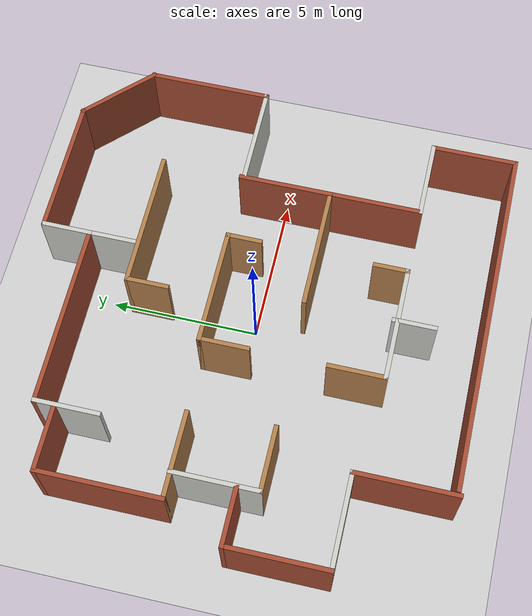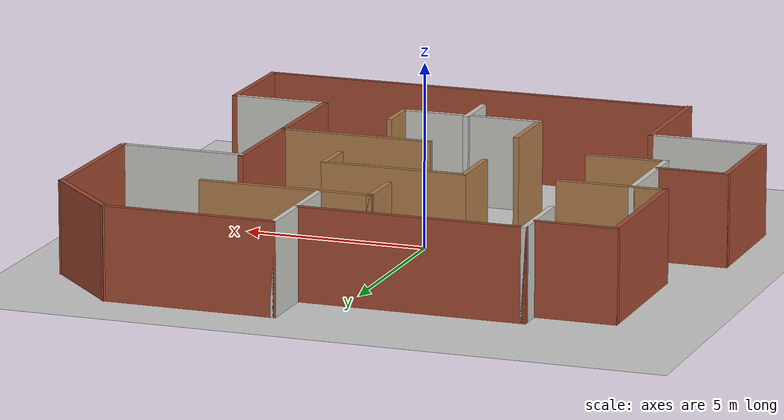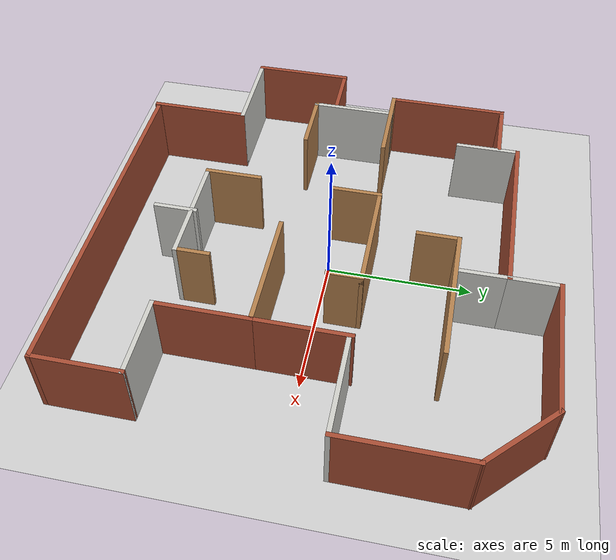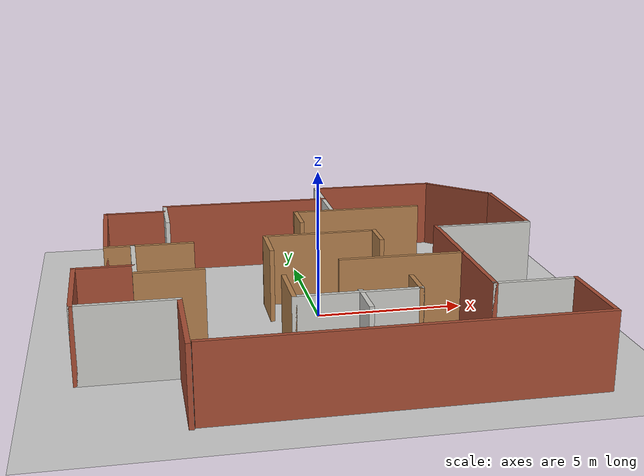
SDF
<sdf version="1.6">
 <world name="default">
  <plugin name="gazebo_ros_state" filename="libgazebo_ros_state.so">
   <ros><namespace>/gazebo</namespace></ros>
   <update_rate>1.0</update_rate>
  </plugin>
  <light name="sun" type="directional">
   <pose>0 0 10 0 -0 0</pose>
   <diffuse>0.8 0.8 0.8 1</diffuse>
   <specular>0.2 0.2 0.2 1</specular>
   <attenuation>
    <range>1000</range>
    <constant>0.9</constant>
    <linear>0.01</linear>
    <quadratic>0.001</quadratic>
   </attenuation>
   <direction>-0.5 0.1 -0.9</direction>
  </light>
  <model name="ground_plane">
   <static>1</static>
   <link name="link">
    <collision name="collision">
     <geometry><plane><normal>0 0 1</normal><size>100 100</size></plane></geometry>
     <surface>
      <contact><collide_bitmask>65535</collide_bitmask></contact>
      <friction><ode><mu>100</mu><mu2>50</mu2></ode></friction>
     </surface>
    </collision>
    <visual name="visual">
     <cast_shadows>0</cast_shadows>
     <geometry><plane><normal>0 0 1</normal><size>100 100</size></plane></geometry>
     <material>
      <script><uri>file://media/materials/scripts/gazebo.material</uri><name>Gazebo/Grey</name></script>
     </material>
    </visual>
   </link>
  </model>
  <gravity>0 0 -9.8</gravity>
  <magnetic_field>6e-06 2.3e-05 -4.2e-05</magnetic_field>
  <atmosphere type="adiabatic"/>
  <physics name="default_physics" default="0" type="ode">
   <max_step_size>0.001</max_step_size>
   <real_time_factor>1</real_time_factor>
   <real_time_update_rate>1000</real_time_update_rate>
  </physics>
  <scene><ambient>0.4 0.4 0.4 1</ambient><background>0.7 0.7 0.7 1</background><shadows>1</shadows></scene>
  <audio><device>default</device></audio>
  <spherical_coordinates>
   <surface_model>EARTH_WGS84</surface_model>
   <latitude_deg>0</latitude_deg>
   <longitude_deg>0</longitude_deg>
   <elevation>0</elevation>
   <heading_deg>0</heading_deg>
  </spherical_coordinates>
  <model name="dat160_w5">
   <link name="Wall_11">
    <collision name="Wall_11_Collision">
     <geometry><box><size>4.25 0.15 2.5</size></box></geometry>
     <pose>0 0 1.25 0 -0 0</pose>
    </collision>
    <visual name="Wall_11_Visual">
     <pose>0 0 1.25 0 -0 0</pose>
     <geometry><box><size>4.25 0.15 2.5</size></box></geometry>
     <material>
      <script><uri>file://media/materials/scripts/gazebo.material</uri><name>Gazebo/Wood</name></script>
      <ambient>1 1 1 1</ambient>
     </material>
     <meta><layer>0</layer></meta>
    </visual>
    <pose>2.50212 -1.56245 0 0 -0 0</pose>
   </link>
   <link name="Wall_163">
    <collision name="Wall_163_Collision">
     <geometry><box><size>1.75 0.15 2.5</size></box></geometry>
     <pose>0 0 1.25 0 -0 0</pose>
    </collision>
    <visual name="Wall_163_Visual">
     <pose>0 0 1.25 0 -0 0</pose>
     <geometry><box><size>1.75 0.15 2.5</size></box></geometry>
     <material>
      <script><uri>file://media/materials/scripts/gazebo.material</uri><name>Gazebo/Wood</name></script>
      <ambient>1 1 1 1</ambient>
     </material>
     <meta><layer>0</layer></meta>
    </visual>
    <pose>-1.59211 0.643376 0 0 -0 -1.5708</pose>
   </link>
   <link name="Wall_167">
    <collision name="Wall_167_Collision">
     <geometry><box><size>2 0.15 2.5</size></box></geometry>
     <pose>0 0 1.25 0 -0 0</pose>
    </collision>
    <visual name="Wall_167_Visual">
     <pose>0 0 1.25 0 -0 0</pose>
     <geometry><box><size>2 0.15 2.5</size></box></geometry>
     <material>
      <script><uri>file://media/materials/scripts/gazebo.material</uri><name>Gazebo/Wood</name></script>
      <ambient>1 1 1 1</ambient>
     </material>
     <meta><layer>0</layer></meta>
    </visual>
    <pose>-1.59211 -3.73162 0 0 -0 -1.5708</pose>
   </link>
   <link name="Wall_184">
    <collision name="Wall_184_Collision">
     <geometry><box><size>3.25 0.15 2.5</size></box></geometry>
     <pose>0 0 1.25 0 -0 0</pose>
    </collision>
    <visual name="Wall_184_Visual">
     <pose>0 0 1.25 0 -0 0</pose>
     <geometry><box><size>3.25 0.15 2.5</size></box></geometry>
     <material>
      <script><uri>file://media/materials/scripts/gazebo.material</uri><name>Gazebo/Bricks</name></script>
      <ambient>1 1 1 1</ambient>
     </material>
     <meta><layer>0</layer></meta>
    </visual>
    <pose>4.55212 -3.11245 0 0 -0 -1.5708</pose>
   </link>
   <link name="Wall_185">
    <collision name="Wall_185_Collision">
     <geometry><box><size>2.75 0.15 2.5</size></box></geometry>
     <pose>0 0 1.25 0 -0 0</pose>
    </collision>
    <visual name="Wall_185_Visual">
     <pose>0 0 1.25 0 -0 0</pose>
     <geometry><box><size>2.75 0.15 2.5</size></box></geometry>
     <material>
      <script><uri>file://media/materials/scripts/gazebo.material</uri><name>Gazebo/CeilingTiled</name></script>
      <ambient>1 1 1 1</ambient>
     </material>
     <meta><layer>0</layer></meta>
    </visual>
    <pose>5.85212 -4.66245 0 0 -0 0</pose>
   </link>
   <link name="Wall_186">
    <collision name="Wall_186_Collision">
     <geometry><box><size>3 0.15 2.5</size></box></geometry>
     <pose>0 0 1.25 0 -0 0</pose>
    </collision>
    <visual name="Wall_186_Visual">
     <pose>0 0 1.25 0 -0 0</pose>
     <geometry><box><size>3 0.15 2.5</size></box></geometry>
     <material>
      <script><uri>file://media/materials/scripts/gazebo.material</uri><name>Gazebo/Bricks</name></script>
      <ambient>1 1 1 1</ambient>
     </material>
     <meta><layer>0</layer></meta>
    </visual>
    <pose>7.15212 -6.08745 0 0 -0 -1.5708</pose>
   </link>
   <link name="Wall_187">
    <collision name="Wall_187_Collision">
     <geometry><box><size>12 0.15 2.5</size></box></geometry>
     <pose>0 0 1.25 0 -0 0</pose>
    </collision>
    <visual name="Wall_187_Visual">
     <pose>0 0 1.25 0 -0 0</pose>
     <geometry><box><size>12 0.15 2.5</size></box></geometry>
     <material>
      <script><uri>file://media/materials/scripts/gazebo.material</uri><name>Gazebo/Bricks</name></script>
      <ambient>1 1 1 1</ambient>
     </material>
     <meta><layer>0</layer></meta>
    </visual>
    <pose>1.22712 -7.51245 0 0 -0 3.14159</pose>
   </link>
   <link name="Wall_189">
    <collision name="Wall_189_Collision">
     <geometry><box><size>1.5 0.15 2.5</size></box></geometry>
     <pose>0 0 1.25 0 -0 0</pose>
    </collision>
    <visual name="Wall_189_Visual">
     <pose>0 0 1.25 0 -0 0</pose>
     <geometry><box><size>1.5 0.15 2.5</size></box></geometry>
     <material>
      <script><uri>file://media/materials/scripts/gazebo.material</uri><name>Gazebo/CeilingTiled</name></script>
      <ambient>1 1 1 1</ambient>
     </material>
     <meta><layer>0</layer></meta>
    </visual>
    <pose>0.43373 -5.21115 0 0 -0 -1.5708</pose>
   </link>
   <link name="Wall_191">
    <collision name="Wall_191_Collision">
     <geometry><box><size>4.75 0.15 2.5</size></box></geometry>
     <pose>0 0 1.25 0 -0 0</pose>
    </collision>
    <visual name="Wall_191_Visual">
     <pose>0 0 1.25 0 -0 0</pose>
     <geometry><box><size>4.75 0.15 2.5</size></box></geometry>
     <material>
      <script><uri>file://media/materials/scripts/gazebo.material</uri><name>Gazebo/Wood</name></script>
      <ambient>1 1 1 1</ambient>
     </material>
     <meta><layer>0</layer></meta>
    </visual>
    <pose>2.25212 4.28755 0 0 -0 3.14159</pose>
   </link>
   <link name="Wall_192">
    <collision name="Wall_192_Collision">
     <geometry><box><size>1.5 0.15 2.5</size></box></geometry>
     <pose>0 0 1.25 0 -0 0</pose>
    </collision>
    <visual name="Wall_192_Visual">
     <pose>0 0 1.25 0 -0 0</pose>
     <geometry><box><size>1.5 0.15 2.5</size></box></geometry>
     <material>
      <script><uri>file://media/materials/scripts/gazebo.material</uri><name>Gazebo/Wood</name></script>
      <ambient>1 1 1 1</ambient>
     </material>
     <meta><layer>0</layer></meta>
    </visual>
    <pose>-0.047882 3.61255 0 0 -0 -1.5708</pose>
   </link>
   <link name="Wall_194">
    <collision name="Wall_194_Collision">
     <geometry><box><size>1.75 0.15 2.5</size></box></geometry>
     <pose>0 0 1.25 0 -0 0</pose>
    </collision>
    <visual name="Wall_194_Visual">
     <pose>0 0 1.25 0 -0 0</pose>
     <geometry><box><size>1.75 0.15 2.5</size></box></geometry>
     <material>
      <script><uri>file://media/materials/scripts/gazebo.material</uri><name>Gazebo/CeilingTiled</name></script>
      <ambient>1 1 1 1</ambient>
     </material>
     <meta><layer>0</layer></meta>
    </visual>
    <pose>1.32375 5.16408 0 0 -0 1.5708</pose>
   </link>
   <link name="Wall_195">
    <collision name="Wall_195_Collision">
     <geometry><box><size>6.25 0.15 2.5</size></box></geometry>
     <pose>0 0 1.25 0 -0 0</pose>
    </collision>
    <visual name="Wall_195_Visual">
     <pose>0 0 1.25 0 -0 0</pose>
     <geometry><box><size>6.25 0.15 2.5</size></box></geometry>
     <material>
      <script><uri>file://media/materials/scripts/gazebo.material</uri><name>Gazebo/Bricks</name></script>
      <ambient>1 1 1 1</ambient>
     </material>
     <meta><layer>0</layer></meta>
    </visual>
    <pose>-1.72625 5.96408 0 0 -0 3.14159</pose>
   </link>
   <link name="Wall_196">
    <collision name="Wall_196_Collision">
     <geometry><box><size>2.25 0.15 2.5</size></box></geometry>
     <pose>0 0 1.25 0 -0 0</pose>
    </collision>
    <visual name="Wall_196_Visual">
     <pose>0 0 1.25 0 -0 0</pose>
     <geometry><box><size>2.25 0.15 2.5</size></box></geometry>
     <material>
      <script><uri>file://media/materials/scripts/gazebo.material</uri><name>Gazebo/CeilingTiled</name></script>
      <ambient>1 1 1 1</ambient>
     </material>
     <meta><layer>0</layer></meta>
    </visual>
    <pose>-4.77625 4.91408 0 0 -0 -1.5708</pose>
   </link>
   <link name="Wall_198">
    <collision name="Wall_198_Collision">
     <geometry><box><size>2.25 0.15 2.5</size></box></geometry>
     <pose>0 0 1.25 0 -0 0</pose>
    </collision>
    <visual name="Wall_198_Visual">
     <pose>0 0 1.25 0 -0 0</pose>
     <geometry><box><size>2.25 0.15 2.5</size></box></geometry>
     <material>
      <script><uri>file://media/materials/scripts/gazebo.material</uri><name>Gazebo/Bricks</name></script>
      <ambient>1 1 1 1</ambient>
     </material>
     <meta><layer>0</layer></meta>
    </visual>
    <pose>-5.91595 5.29456 0 0 -0 3.14159</pose>
   </link>
   <link name="Wall_199">
    <collision name="Wall_199_Collision">
     <geometry><box><size>4.25 0.15 2.5</size></box></geometry>
     <pose>0 0 1.25 0 -0 0</pose>
    </collision>
    <visual name="Wall_199_Visual">
     <pose>0 0 1.25 0 -0 0</pose>
     <geometry><box><size>4.25 0.15 2.5</size></box></geometry>
     <material>
      <script><uri>file://media/materials/scripts/gazebo.material</uri><name>Gazebo/Bricks</name></script>
      <ambient>1 1 1 1</ambient>
     </material>
     <meta><layer>0</layer></meta>
    </visual>
    <pose>-6.96595 3.24456 0 0 -0 -1.5708</pose>
   </link>
   <link name="Wall_200">
    <collision name="Wall_200_Collision">
     <geometry><box><size>3 0.15 2.5</size></box></geometry>
     <pose>0 0 1.25 0 -0 0</pose>
    </collision>
    <visual name="Wall_200_Visual">
     <pose>0 0 1.25 0 -0 0</pose>
     <geometry><box><size>3 0.15 2.5</size></box></geometry>
     <material>
      <script><uri>file://media/materials/scripts/gazebo.material</uri><name>Gazebo/Wood</name></script>
      <ambient>1 1 1 1</ambient>
     </material>
     <meta><layer>0</layer></meta>
    </visual>
    <pose>-5.54095 1.19456 0 0 -0 0</pose>
   </link>
   <link name="Wall_202">
    <collision name="Wall_202_Collision">
     <geometry><box><size>3 0.15 2.5</size></box></geometry>
     <pose>0 0 1.25 0 -0 0</pose>
    </collision>
    <visual name="Wall_202_Visual">
     <pose>0 0 1.25 0 -0 0</pose>
     <geometry><box><size>3 0.15 2.5</size></box></geometry>
     <material>
      <script><uri>file://media/materials/scripts/gazebo.material</uri><name>Gazebo/CeilingTiled</name></script>
      <ambient>1 1 1 1</ambient>
     </material>
     <meta><layer>0</layer></meta>
    </visual>
    <pose>-6.07962 -0.216456 0 0 -0 -1.5708</pose>
   </link>
   <link name="Wall_203">
    <collision name="Wall_203_Collision">
     <geometry><box><size>2.25 0.15 2.5</size></box></geometry>
     <pose>0 0 1.25 0 -0 0</pose>
    </collision>
    <visual name="Wall_203_Visual">
     <pose>0 0 1.25 0 -0 0</pose>
     <geometry><box><size>2.25 0.15 2.5</size></box></geometry>
     <material>
      <script><uri>file://media/materials/scripts/gazebo.material</uri><name>Gazebo/Wood</name></script>
      <ambient>1 1 1 1</ambient>
     </material>
     <meta><layer>0</layer></meta>
    </visual>
    <pose>-5.02962 -1.64146 0 0 -0 0</pose>
   </link>
   <link name="Wall_205">
    <collision name="Wall_205_Collision">
     <geometry><box><size>2 0.15 2.5</size></box></geometry>
     <pose>0 0 1.25 0 -0 0</pose>
    </collision>
    <visual name="Wall_205_Visual">
     <pose>0 0 1.25 0 -0 0</pose>
     <geometry><box><size>2 0.15 2.5</size></box></geometry>
     <material>
      <script><uri>file://media/materials/scripts/gazebo.material</uri><name>Gazebo/Bricks</name></script>
      <ambient>1 1 1 1</ambient>
     </material>
     <meta><layer>0</layer></meta>
    </visual>
    <pose>-7.04507 -0.895146 0 0 -0 3.14159</pose>
   </link>
   <link name="Wall_206">
    <collision name="Wall_206_Collision">
     <geometry><box><size>3.5 0.15 2.5</size></box></geometry>
     <pose>0 0 1.25 0 -0 0</pose>
    </collision>
    <visual name="Wall_206_Visual">
     <pose>0 0 1.25 0 -0 0</pose>
     <geometry><box><size>3.5 0.15 2.5</size></box></geometry>
     <material>
      <script><uri>file://media/materials/scripts/gazebo.material</uri><name>Gazebo/Bricks</name></script>
      <ambient>1 1 1 1</ambient>
     </material>
     <meta><layer>0</layer></meta>
    </visual>
    <pose>-7.97007 -2.57015 0 0 -0 -1.5708</pose>
   </link>
   <link name="Wall_207">
    <collision name="Wall_207_Collision">
     <geometry><box><size>3.25 0.15 2.5</size></box></geometry>
     <pose>0 0 1.25 0 -0 0</pose>
    </collision>
    <visual name="Wall_207_Visual">
     <pose>0 0 1.25 0 -0 0</pose>
     <geometry><box><size>3.25 0.15 2.5</size></box></geometry>
     <material>
      <script><uri>file://media/materials/scripts/gazebo.material</uri><name>Gazebo/CeilingTiled</name></script>
      <ambient>1 1 1 1</ambient>
     </material>
     <meta><layer>0</layer></meta>
    </visual>
    <pose>-6.42007 -4.24515 0 0 -0 0</pose>
   </link>
   <link name="Wall_208">
    <collision name="Wall_208_Collision">
     <geometry><box><size>3.5 0.15 2.5</size></box></geometry>
     <pose>0 0 1.25 0 -0 0</pose>
    </collision>
    <visual name="Wall_208_Visual">
     <pose>0 0 1.25 0 -0 0</pose>
     <geometry><box><size>3.5 0.15 2.5</size></box></geometry>
     <material>
      <script><uri>file://media/materials/scripts/gazebo.material</uri><name>Gazebo/Bricks</name></script>
      <ambient>1 1 1 1</ambient>
     </material>
     <meta><layer>0</layer></meta>
    </visual>
    <pose>-4.87007 -5.92015 0 0 -0 -1.5708</pose>
   </link>
   <link name="Wall_211">
    <collision name="Wall_211_Collision">
     <geometry><box><size>3.25 0.15 2.5</size></box></geometry>
     <pose>0 0 1.25 0 -0 0</pose>
    </collision>
    <visual name="Wall_211_Visual">
     <pose>0 0 1.25 0 -0 0</pose>
     <geometry><box><size>3.25 0.15 2.5</size></box></geometry>
     <material>
      <script><uri>file://media/materials/scripts/gazebo.material</uri><name>Gazebo/Bricks</name></script>
      <ambient>1 1 1 1</ambient>
     </material>
     <meta><layer>0</layer></meta>
    </visual>
    <pose>4.55212 -0.012446 0 0 -0 1.5708</pose>
   </link>
   <link name="Wall_213">
    <collision name="Wall_213_Collision">
     <geometry><box><size>1.75 0.15 2.5</size></box></geometry>
     <pose>0 0 1.25 0 -0 0</pose>
    </collision>
    <visual name="Wall_213_Visual">
     <pose>0 0 1.25 0 -0 0</pose>
     <geometry><box><size>1.75 0.15 2.5</size></box></geometry>
     <material>
      <script><uri>file://media/materials/scripts/gazebo.material</uri><name>Gazebo/CeilingTiled</name></script>
      <ambient>1 1 1 1</ambient>
     </material>
     <meta><layer>0</layer></meta>
    </visual>
    <pose>1.32375 6.76408 0 0 -0 1.5708</pose>
   </link>
   <link name="Wall_214">
    <collision name="Wall_214_Collision">
     <geometry><box><size>4.75 0.15 2.5</size></box></geometry>
     <pose>0 0 1.25 0 -0 0</pose>
    </collision>
    <visual name="Wall_214_Visual">
     <pose>0 0 1.25 0 -0 0</pose>
     <geometry><box><size>4.75 0.15 2.5</size></box></geometry>
     <material>
      <script><uri>file://media/materials/scripts/gazebo.material</uri><name>Gazebo/Bricks</name></script>
      <ambient>1 1 1 1</ambient>
     </material>
     <meta><layer>0</layer></meta>
    </visual>
    <pose>3.62375 7.56408 0 0 -0 0</pose>
   </link>
   <link name="Wall_215">
    <collision name="Wall_215_Collision">
     <geometry><box><size>3 0.15 2.5</size></box></geometry>
     <pose>0 0 1.25 0 -0 0</pose>
    </collision>
    <visual name="Wall_215_Visual">
     <pose>0 0 1.25 0 -0 0</pose>
     <geometry><box><size>3 0.15 2.5</size></box></geometry>
     <material>
      <script><uri>file://media/materials/scripts/gazebo.material</uri><name>Gazebo/Bricks</name></script>
      <ambient>1 1 1 1</ambient>
     </material>
     <meta><layer>0</layer></meta>
    </visual>
    <pose>6.93138 6.55645 0 0 -0 -0.785398</pose>
   </link>
   <link name="Wall_216">
    <collision name="Wall_216_Collision">
     <geometry><box><size>4.25 0.15 2.5</size></box></geometry>
     <pose>0 0 1.25 0 -0 0</pose>
    </collision>
    <visual name="Wall_216_Visual">
     <pose>0 0 1.25 0 -0 0</pose>
     <geometry><box><size>4.25 0.15 2.5</size></box></geometry>
     <material>
      <script><uri>file://media/materials/scripts/gazebo.material</uri><name>Gazebo/Bricks</name></script>
      <ambient>1 1 1 1</ambient>
     </material>
     <meta><layer>0</layer></meta>
    </visual>
    <pose>7.93901 3.49883 0 0 -0 -1.5708</pose>
   </link>
   <link name="Wall_217">
    <collision name="Wall_217_Collision">
     <geometry><box><size>3.5 0.15 2.5</size></box></geometry>
     <pose>0 0 1.25 0 -0 0</pose>
    </collision>
    <visual name="Wall_217_Visual">
     <pose>0 0 1.25 0 -0 0</pose>
     <geometry><box><size>3.5 0.15 2.5</size></box></geometry>
     <material>
      <script><uri>file://media/materials/scripts/gazebo.material</uri><name>Gazebo/CeilingTiled</name></script>
      <ambient>1 1 1 1</ambient>
     </material>
     <meta><layer>0</layer></meta>
    </visual>
    <pose>6.26401 1.44883 0 0 -0 3.14159</pose>
   </link>
   <link name="Wall_3">
    <collision name="Wall_3_Collision">
     <geometry><box><size>4 0.15 2.5</size></box></geometry>
     <pose>0 0 1.25 0 -0 0</pose>
    </collision>
    <visual name="Wall_3_Visual">
     <pose>0 0 1.25 0 -0 0</pose>
     <geometry><box><size>4 0.15 2.5</size></box></geometry>
     <material>
      <script><uri>file://media/materials/scripts/gazebo.material</uri><name>Gazebo/Wood</name></script>
      <ambient>1 1 1 1</ambient>
     </material>
     <meta><layer>0</layer></meta>
    </visual>
    <pose>0.332893 1.44338 0 0 -0 0</pose>
   </link>
   <link name="Wall_6">
    <collision name="Wall_6_Collision">
     <geometry><box><size>4 0.15 2.5</size></box></geometry>
     <pose>0 0 1.25 0 -0 0</pose>
    </collision>
    <visual name="Wall_6_Visual">
     <pose>0 0 1.25 0 -0 0</pose>
     <geometry><box><size>4 0.15 2.5</size></box></geometry>
     <material>
      <script><uri>file://media/materials/scripts/gazebo.material</uri><name>Gazebo/CeilingTiled</name></script>
      <ambient>1 1 1 1</ambient>
     </material>
     <meta><layer>0</layer></meta>
    </visual>
    <pose>0.332893 -4.65662 0 0 -0 0</pose>
   </link>
   <link name="Wall_7">
    <collision name="Wall_7_Collision">
     <geometry><box><size>1.25 0.15 2.5</size></box></geometry>
     <pose>0 0 1.25 0 -0 0</pose>
    </collision>
    <visual name="Wall_7_Visual">
     <pose>0 0 1.25 0 -0 0</pose>
     <geometry><box><size>1.25 0.15 2.5</size></box></geometry>
     <material>
      <script><uri>file://media/materials/scripts/gazebo.material</uri><name>Gazebo/Wood</name></script>
      <ambient>1 1 1 1</ambient>
     </material>
     <meta><layer>0</layer></meta>
    </visual>
    <pose>2.25789 -4.10662 0 0 -0 1.5708</pose>
   </link>
   <link name="Wall_9">
    <collision name="Wall_9_Collision">
     <geometry><box><size>1.25 0.15 2.5</size></box></geometry>
     <pose>0 0 1.25 0 -0 0</pose>
    </collision>
    <visual name="Wall_9_Visual">
     <pose>0 0 1.25 0 -0 0</pose>
     <geometry><box><size>1.25 0.15 2.5</size></box></geometry>
     <material>
      <script><uri>file://media/materials/scripts/gazebo.material</uri><name>Gazebo/Wood</name></script>
      <ambient>1 1 1 1</ambient>
     </material>
     <meta><layer>0</layer></meta>
    </visual>
    <pose>2.25789 0.893376 0 0 -0 -1.5708</pose>
   </link>
   <static>1</static>
  </model>
  <light name="user_point_light_0" type="point">
   <pose>5.79735 -5.7509 1 0 -0 0</pose>
   <diffuse>0.5 0.5 0.5 1</diffuse>
   <specular>0.1 0.1 0.1 1</specular>
   <attenuation>
    <range>20</range>
    <constant>0.5</constant>
    <linear>0.01</linear>
    <quadratic>0.001</quadratic>
   </attenuation>
   <cast_shadows>0</cast_shadows>
   <direction>0 0 -1</direction>
  </light>
  <light name="user_point_light_1" type="point">
   <pose>2.23722 6.64653 1 0 -0 0</pose>
   <diffuse>0.5 0.5 0.5 1</diffuse>
   <specular>0.1 0.1 0.1 1</specular>
   <attenuation>
    <range>20</range>
    <constant>0.5</constant>
    <linear>0.01</linear>
    <quadratic>0.001</quadratic>
   </attenuation>
   <cast_shadows>0</cast_shadows>
   <direction>0 0 -1</direction>
  </light>
  <light name="user_point_light_2" type="point">
   <pose>-4.88114 -0.28463 1 0 -0 0</pose>
   <diffuse>0.5 0.5 0.5 1</diffuse>
   <specular>0.1 0.1 0.1 1</specular>
   <attenuation>
    <range>20</range>
    <constant>0.5</constant>
    <linear>0.01</linear>
    <quadratic>0.001</quadratic>
   </attenuation>
   <cast_shadows>0</cast_shadows>
   <direction>0 0 -1</direction>
  </light>
  <light name="user_point_light_3" type="point">
   <pose>-6.63855 -3.1592 1 0 -0 0</pose>
   <diffuse>0.5 0.5 0.5 1</diffuse>
   <specular>0.1 0.1 0.1 1</specular>
   <attenuation>
    <range>20</range>
    <constant>0.5</constant>
    <linear>0.01</linear>
    <quadratic>0.001</quadratic>
   </attenuation>
   <cast_shadows>0</cast_shadows>
   <direction>0 0 -1</direction>
  </light>
  <light name="user_point_light_4" type="point">
   <pose>-1.11056 -5.40476 1 0 -0 0</pose>
   <diffuse>0.5 0.5 0.5 1</diffuse>
   <specular>0.1 0.1 0.1 1</specular>
   <attenuation>
    <range>20</range>
    <constant>0.5</constant>
    <linear>0.01</linear>
    <quadratic>0.001</quadratic>
   </attenuation>
   <cast_shadows>0</cast_shadows>
   <direction>0 0 -1</direction>
  </light>
 </world>
</sdf>
